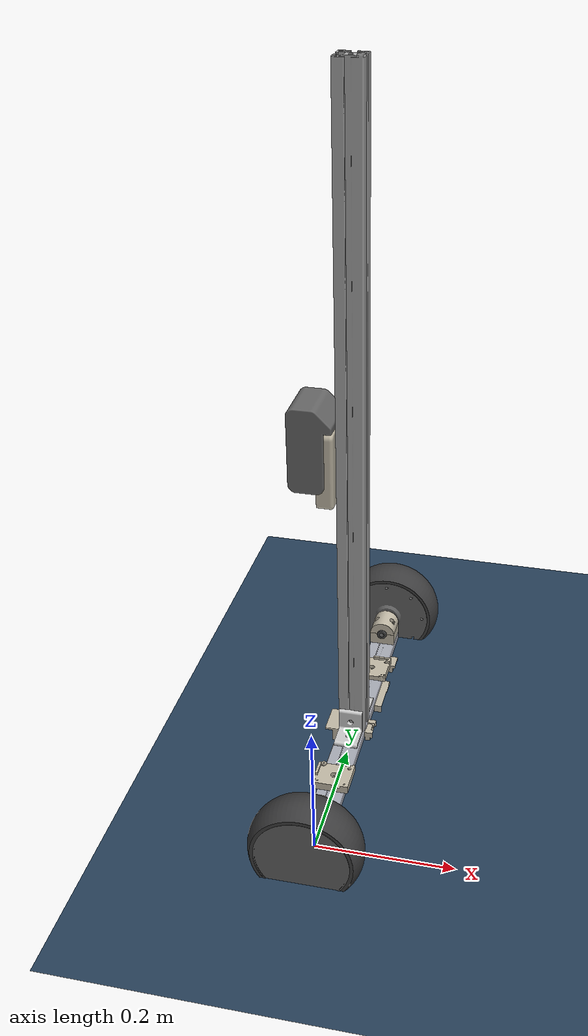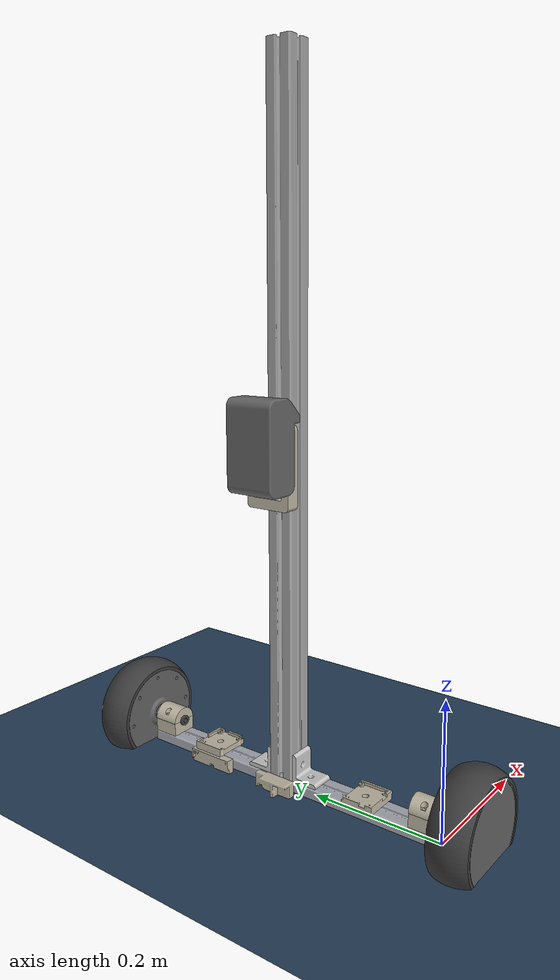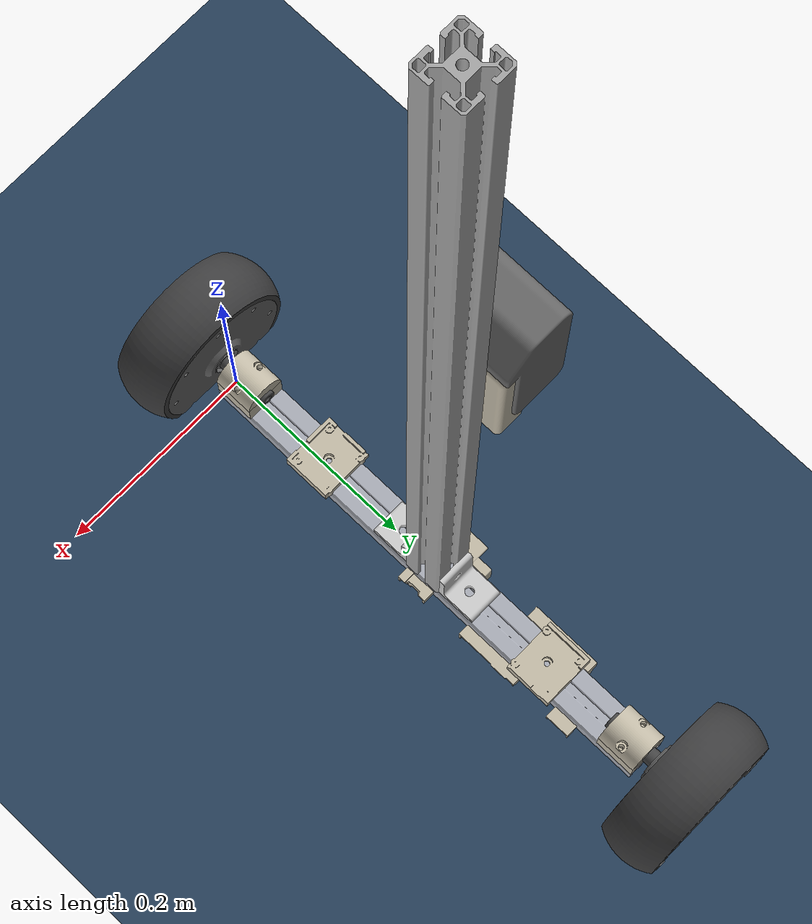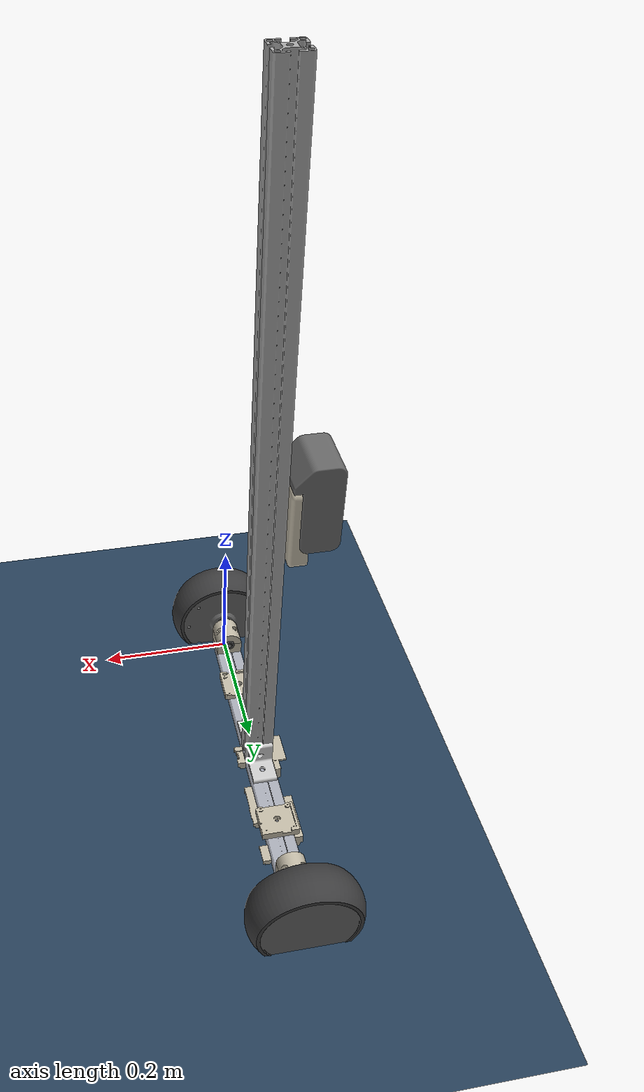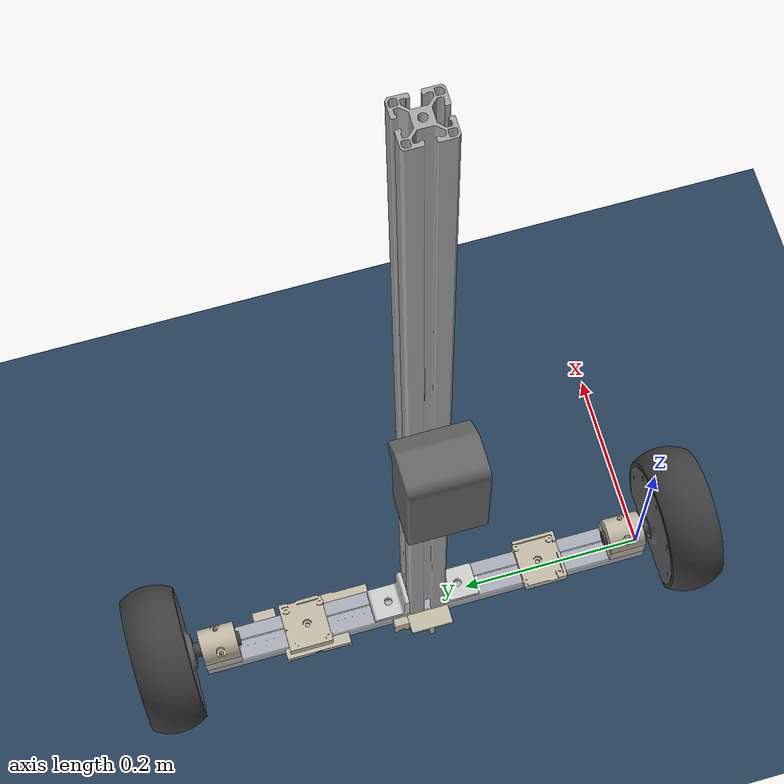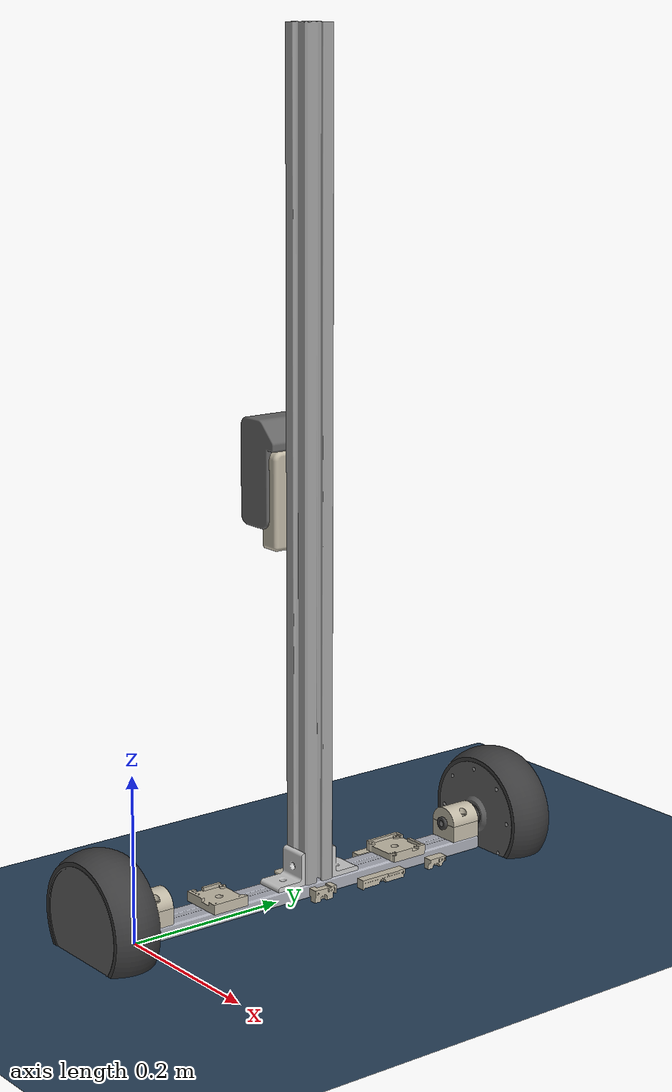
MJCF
<mujoco model="scene">
    <include file="finn_robot.xml" />

    <visual>
        <headlight diffuse="0.6 0.6 0.6" ambient="0.3 0.3 0.3" specular="0 0 0" />
        <rgba haze="0.15 0.25 0.35 1" />
        <global azimuth="160" elevation="-20" />
    </visual>

    <asset>
        <texture type="skybox" builtin="gradient" rgb1="0.3 0.5 0.7" rgb2="0 0 0" width="512"
            height="3072" />
        <texture type="2d" name="groundplane" builtin="checker" mark="edge" rgb1="0.2 0.3 0.4"
            rgb2="0.1 0.2 0.3"
            markrgb="0.8 0.8 0.8" width="300" height="300" />
        <material name="groundplane" texture="groundplane" texuniform="true" texrepeat="5 5"
            reflectance="0.2" />
    </asset>

    <worldbody>
        <light pos="0 0 3.5" dir="0 0 -1" directional="true" />
        <geom name="floor" size="0 0 0.05" pos="0 0 0" type="plane" material="groundplane" />
    </worldbody>
</mujoco>

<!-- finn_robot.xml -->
<!-- Generated using onshape-to-robot -->
<!-- Onshape https://cad.onshape.com/documents/ed1c90944582329b3a0c4b53/w/ef6c6e50f2f631eadb017a5a/e/35effa0e1acd53deffeb4bb9 -->
<mujoco model="finn">
  <compiler angle="radian" meshdir="assets" autolimits="true"/>
  <default>
    <default class="finn">
      <joint frictionloss="0.1" armature="0.005"/>
      <position kp="50" dampratio="1"/>
      <default class="visual">
        <geom type="mesh" contype="0" conaffinity="0" group="2"/>
      </default>
      <default class="collision">
        <geom group="3"/>
      </default>
    </default>
  </default>
  <worldbody>
    <!-- Link base_2 -->
    <body name="base_2" pos="0 0 0" quat="1 0 0 0" childclass="finn">
      <inertial pos="-0.0125903 0.248567 0.347009" mass="3.99899" fullinertia="0.405206 0.375974 0.034759 0.000116582 0.00733655 -0.00106291"/>
      <!-- Part right_motor_shaft -->
      <geom type="mesh" class="visual" pos="3.24608e-05 0.456 0.04" quat="1 -0 -0 0" mesh="right_motor_shaft" material="right_motor_shaft_material"/>
      <geom type="mesh" class="collision" pos="3.24608e-05 0.456 0.04" quat="1 -0 -0 0" mesh="right_motor_shaft" material="right_motor_shaft_material"/>
      <!-- Part left_motor_shaft -->
      <geom type="mesh" class="visual" pos="6.49924e-05 0.043 0.04" quat="0 0 -0 -1" mesh="left_motor_shaft" material="left_motor_shaft_material"/>
      <geom type="mesh" class="collision" pos="6.49924e-05 0.043 0.04" quat="0 0 -0 -1" mesh="left_motor_shaft" material="left_motor_shaft_material"/>
      <!-- Part motues_bracket -->
      <geom type="mesh" class="visual" pos="-0.000532456 0.393169 0.028" quat="0.707107 0.707107 -0 -0" mesh="motues_bracket" material="motues_bracket_material"/>
      <geom type="mesh" class="collision" pos="-0.000532456 0.393169 0.028" quat="0.707107 0.707107 -0 -0" mesh="motues_bracket" material="motues_bracket_material"/>
      <!-- Part 5b_wago_bracket -->
      <geom type="mesh" class="visual" pos="-0.03 0.237079 -0.000467542" quat="0.707107 0 -0.707107 -0" mesh="5b_wago_bracket" material="5b_wago_bracket_material"/>
      <geom type="mesh" class="collision" pos="-0.03 0.237079 -0.000467542" quat="0.707107 0 -0.707107 -0" mesh="5b_wago_bracket" material="5b_wago_bracket_material"/>
      <!-- Part dcdc_converter_bracket -->
      <geom type="mesh" class="visual" pos="-0.028 0.4096 0.017565" quat="0.5 0.5 -0.5 -0.5" mesh="dcdc_converter_bracket" material="dcdc_converter_bracket_material"/>
      <geom type="mesh" class="collision" pos="-0.028 0.4096 0.017565" quat="0.5 0.5 -0.5 -0.5" mesh="dcdc_converter_bracket" material="dcdc_converter_bracket_material"/>
      <!-- Part motues_bracket_2 -->
      <geom type="mesh" class="visual" pos="-0.000467539 0.105431 0.028125" quat="0 0 0.707107 0.707107" mesh="motues_bracket" material="motues_bracket_material"/>
      <geom type="mesh" class="collision" pos="-0.000467539 0.105431 0.028125" quat="0 0 0.707107 0.707107" mesh="motues_bracket" material="motues_bracket_material"/>
      <!-- Part bno085_bracket -->
      <geom type="mesh" class="visual" pos="0.028 0.2368 -0.0100032" quat="0.5 0.5 0.5 0.5" mesh="bno085_bracket" material="bno085_bracket_material"/>
      <geom type="mesh" class="collision" pos="0.028 0.2368 -0.0100032" quat="0.5 0.5 0.5 0.5" mesh="bno085_bracket" material="bno085_bracket_material"/>
      <!-- Part canpal_bracket -->
      <geom type="mesh" class="visual" pos="0.028 0.41434 0.00969246" quat="0.707107 -0 0.707107 0" mesh="canpal_bracket" material="canpal_bracket_material"/>
      <geom type="mesh" class="collision" pos="0.028 0.41434 0.00969246" quat="0.707107 -0 0.707107 0" mesh="canpal_bracket" material="canpal_bracket_material"/>
      <!-- Part teensy_bracket -->
      <geom type="mesh" class="visual" pos="0.028 0.3395 -0.000467542" quat="0.5 -0.5 0.5 -0.5" mesh="teensy_bracket" material="teensy_bracket_material"/>
      <geom type="mesh" class="collision" pos="0.028 0.3395 -0.000467542" quat="0.5 -0.5 0.5 -0.5" mesh="teensy_bracket" material="teensy_bracket_material"/>
      <!-- Part base_rail -->
      <geom type="mesh" class="visual" pos="0 0.1011 -0" quat="0.707107 -0.707107 0 -0" mesh="base_rail" material="base_rail_material"/>
      <geom type="mesh" class="collision" pos="0 0.1011 -0" quat="0.707107 -0.707107 0 -0" mesh="base_rail" material="base_rail_material"/>
      <!-- Part mast -->
      <geom type="mesh" class="visual" pos="-3.24557e-05 0.2495 0.9184" quat="1 -0 0 0" mesh="mast" material="mast_material"/>
      <geom type="mesh" class="collision" pos="-3.24557e-05 0.2495 0.9184" quat="1 -0 0 0" mesh="mast" material="mast_material"/>
      <!-- Part battery_mass -->
      <geom type="mesh" class="visual" pos="-0.0587825 0.249968 0.44367" quat="0.5 0.5 0.5 0.5" mesh="battery_mass" material="battery_mass_material"/>
      <geom type="mesh" class="collision" pos="-0.0587825 0.249968 0.44367" quat="0.5 0.5 0.5 0.5" mesh="battery_mass" material="battery_mass_material"/>
      <!-- Part battery_adapter -->
      <geom type="mesh" class="visual" pos="-0.0450325 0.249968 0.469969" quat="0.5 0.5 0.5 0.5" mesh="battery_adapter" material="battery_adapter_material"/>
      <geom type="mesh" class="collision" pos="-0.0450325 0.249968 0.469969" quat="0.5 0.5 0.5 0.5" mesh="battery_adapter" material="battery_adapter_material"/>
      <!-- Part mast_bracket -->
      <geom type="mesh" class="visual" pos="-3.24537e-05 0.229804 0.02" quat="0 0 -0 -1" mesh="mast_bracket" material="mast_bracket_material"/>
      <geom type="mesh" class="collision" pos="-3.24537e-05 0.229804 0.02" quat="0 0 -0 -1" mesh="mast_bracket" material="mast_bracket_material"/>
      <!-- Part mast_bracket_2 -->
      <geom type="mesh" class="visual" pos="-3.24576e-05 0.269196 0.02" quat="1 -0 -0 -0" mesh="mast_bracket" material="mast_bracket_material"/>
      <geom type="mesh" class="collision" pos="-3.24576e-05 0.269196 0.02" quat="1 -0 -0 -0" mesh="mast_bracket" material="mast_bracket_material"/>
      <!-- Part motor_bk_bottom -->
      <geom type="mesh" class="visual" pos="6.49924e-05 -0.0005 0.04" quat="1 -0 0 0" mesh="motor_bk_bottom" material="motor_bk_bottom_material"/>
      <geom type="mesh" class="collision" pos="6.49924e-05 -0.0005 0.04" quat="1 -0 0 0" mesh="motor_bk_bottom" material="motor_bk_bottom_material"/>
      <!-- Part motor_bk_top -->
      <geom type="mesh" class="visual" pos="6.49924e-05 -0.0005 0.04" quat="1 -0 -0 0" mesh="motor_bk_top" material="motor_bk_top_material"/>
      <geom type="mesh" class="collision" pos="6.49924e-05 -0.0005 0.04" quat="1 -0 -0 0" mesh="motor_bk_top" material="motor_bk_top_material"/>
      <!-- Part motor_bk_bottom_2 -->
      <geom type="mesh" class="visual" pos="3.24608e-05 0.4595 0.04" quat="1 -0 0 0" mesh="motor_bk_bottom" material="motor_bk_bottom_material"/>
      <geom type="mesh" class="collision" pos="3.24608e-05 0.4595 0.04" quat="1 -0 0 0" mesh="motor_bk_bottom" material="motor_bk_bottom_material"/>
      <!-- Part motor_bk_top_2 -->
      <geom type="mesh" class="visual" pos="3.24608e-05 0.4595 0.04" quat="1 -0 0 0" mesh="motor_bk_top" material="motor_bk_top_material"/>
      <geom type="mesh" class="collision" pos="3.24608e-05 0.4595 0.04" quat="1 -0 0 0" mesh="motor_bk_top" material="motor_bk_top_material"/>
      <!-- Frame imu -->
      <site group="3" name="imu" pos="0.02957 0.2495 0.00142679" quat="0.5 0.5 0.5 0.5"/>
      <!-- Frame base -->
      <site group="3" name="base" pos="6.49924e-05 0.2495 0.04" quat="0 -0 0.707107 0.707107"/>
      <!-- Link left_wheel -->
      <body name="left_wheel" pos="6.49924e-05 -0.009 0.04" quat="0.707107 -0.707107 -0 -0">
        <!-- Joint from base_2 to left_wheel -->
        <joint axis="0 0 1" name="left_wheel"/>
        <inertial pos="8.622e-09 -8.622e-09 -0.0329857" mass="2.02455" fullinertia="0.00335882 0.00335882 0.00560974 -1e-12 -4.49e-10 4.49e-10"/>
        <!-- Part motor_hub -->
        <geom type="mesh" class="visual" pos="-0 0 -0.004" quat="0.707107 -0.707107 0 -0" mesh="motor_hub" material="motor_hub_material"/>
        <geom type="mesh" class="collision" pos="-0 0 -0.004" quat="0.707107 -0.707107 0 -0" mesh="motor_hub" material="motor_hub_material"/>
        <!-- Part motor_tire -->
        <geom type="mesh" class="visual" pos="-0 0 -0.0045" quat="0.707107 -0.707107 -0 -0" mesh="motor_tire" material="motor_tire_material"/>
        <geom type="mesh" class="collision" pos="-0 0 -0.0045" quat="0.707107 -0.707107 -0 -0" mesh="motor_tire" material="motor_tire_material"/>
        <!-- Frame left_wheel_center -->
        <site group="3" name="left_wheel_center" pos="-0 0 -0.033" quat="1 0 0 0"/>
      </body>
      <!-- Link right_wheel -->
      <body name="right_wheel" pos="3.24608e-05 0.508 0.04" quat="0.645101 0.645101 -0.28956 0.28956">
        <!-- Joint from base_2 to right_wheel -->
        <joint axis="0 0 1" name="right_wheel"/>
        <inertial pos="8.622e-09 -8.622e-09 -0.0329857" mass="2.02455" fullinertia="0.00335882 0.00335882 0.00560974 -1e-12 -4.49e-10 4.49e-10"/>
        <!-- Part motor_hub_2 -->
        <geom type="mesh" class="visual" pos="0 0 -0.004" quat="0.707107 -0.707107 -0 -0" mesh="motor_hub" material="motor_hub_material"/>
        <geom type="mesh" class="collision" pos="0 0 -0.004" quat="0.707107 -0.707107 -0 -0" mesh="motor_hub" material="motor_hub_material"/>
        <!-- Part motor_tire_2 -->
        <geom type="mesh" class="visual" pos="0 0 -0.0045" quat="0.707107 -0.707107 0 -0" mesh="motor_tire" material="motor_tire_material"/>
        <geom type="mesh" class="collision" pos="0 0 -0.0045" quat="0.707107 -0.707107 0 -0" mesh="motor_tire" material="motor_tire_material"/>
        <!-- Frame right_wheel_center -->
        <site group="3" name="right_wheel_center" pos="0 0 -0.033" quat="1 0 0 0"/>
      </body>
    </body>
  </worldbody>
  <asset>
    <mesh file="motor_hub.stl"/>
    <mesh file="battery_mass.stl"/>
    <mesh file="bno085_bracket.stl"/>
    <mesh file="battery_adapter.stl"/>
    <mesh file="left_motor_shaft.stl"/>
    <mesh file="5b_wago_bracket.stl"/>
    <mesh file="motor_bk_bottom.stl"/>
    <mesh file="teensy_bracket.stl"/>
    <mesh file="canpal_bracket.stl"/>
    <mesh file="base_rail.stl"/>
    <mesh file="dcdc_converter_bracket.stl"/>
    <mesh file="right_motor_shaft.stl"/>
    <mesh file="motor_bk_top.stl"/>
    <mesh file="motor_tire.stl"/>
    <mesh file="mast.stl"/>
    <mesh file="mast_bracket.stl"/>
    <mesh file="motues_bracket.stl"/>
    <material name="right_motor_shaft_material" rgba="0.266667 0.266667 0.266667 1"/>
    <material name="left_motor_shaft_material" rgba="0.266667 0.266667 0.266667 1"/>
    <material name="motues_bracket_material" rgba="0.760784 0.729412 0.654902 1"/>
    <material name="5b_wago_bracket_material" rgba="0.760784 0.729412 0.654902 1"/>
    <material name="dcdc_converter_bracket_material" rgba="0.760784 0.729412 0.654902 1"/>
    <material name="bno085_bracket_material" rgba="0.760784 0.729412 0.654902 1"/>
    <material name="canpal_bracket_material" rgba="0.760784 0.729412 0.654902 1"/>
    <material name="teensy_bracket_material" rgba="0.760784 0.729412 0.654902 1"/>
    <material name="base_rail_material" rgba="0.662745 0.67451 0.713725 1"/>
    <material name="mast_material" rgba="0.647059 0.647059 0.647059 1"/>
    <material name="battery_mass_material" rgba="0.4 0.4 0.4 1"/>
    <material name="battery_adapter_material" rgba="0.760784 0.729412 0.654902 1"/>
    <material name="mast_bracket_material" rgba="0.8 0.8 0.8 1"/>
    <material name="motor_bk_bottom_material" rgba="0.760784 0.729412 0.654902 1"/>
    <material name="motor_bk_top_material" rgba="0.760784 0.729412 0.654902 1"/>
    <material name="motor_hub_material" rgba="0.384314 0.384314 0.384314 1"/>
    <material name="motor_tire_material" rgba="0.239216 0.239216 0.243137 1"/>
  </asset>
  <actuator>
    <position class="finn" name="left_wheel" joint="left_wheel"/>
    <position class="finn" name="right_wheel" joint="right_wheel"/>
  </actuator>
  <equality/>
</mujoco>
